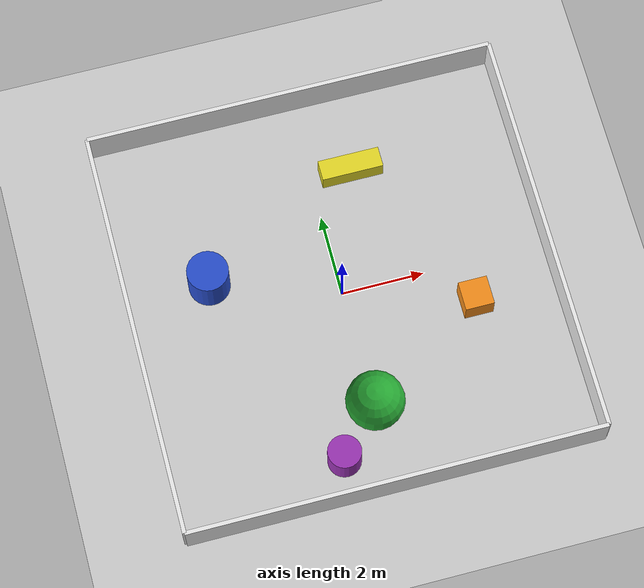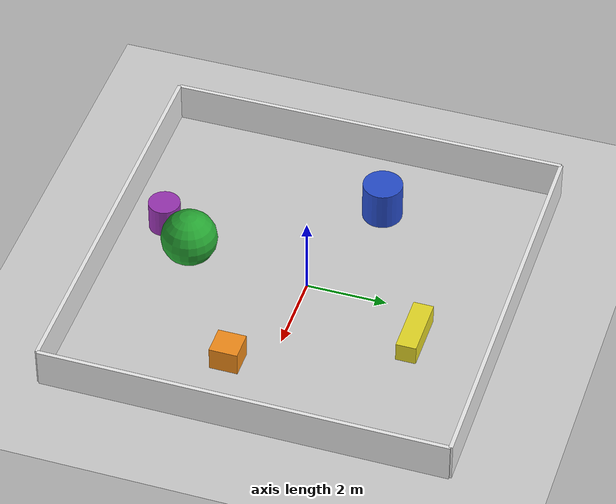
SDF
<?xml version="1.0" ?>
<sdf version="1.7">
  <world name="task_world">

    <!-- Ground Plane -->
    <model name="ground_plane">
      <static>true</static>
      <link name="link">
        <collision name="collision">
          <geometry>
            <plane>
              <normal>0 0 1</normal>
              <size>20 20</size>
            </plane>
          </geometry>
          <surface>
            <friction>
              <ode>
                <mu>0.6</mu>
                <mu2>0.6</mu2>
              </ode>
            </friction>
          </surface>
        </collision>
        <visual name="visual">
          <geometry>
            <plane>
              <normal>0 0 1</normal>
              <size>20 20</size>
            </plane>
          </geometry>
          <material>
            <script>
              <uri>file://media/materials/scripts/gazebo.material</uri>
              <name>Gazebo/Grey</name>
            </script>
          </material>
        </visual>
      </link>
    </model>

    <!-- Boundaries (Walls) -->
    <model name="wall_north">
      <static>true</static>
      <pose>0 5 0.5 0 0 0</pose>
      <link name="link">
        <collision name="collision">
          <geometry><box><size>10.0 0.1 1.0</size></box></geometry>
        </collision>
        <visual name="visual">
          <geometry><box><size>10.0 0.1 1.0</size></box></geometry>
          <material>
            <script><uri>file://media/materials/scripts/gazebo.material</uri><name>Gazebo/White</name></script>
          </material>
        </visual>
      </link>
    </model>

    <model name="wall_south">
      <static>true</static>
      <pose>0 -5 0.5 0 0 0</pose>
      <link name="link">
        <collision name="collision">
          <geometry><box><size>10.0 0.1 1.0</size></box></geometry>
        </collision>
        <visual name="visual">
          <geometry><box><size>10.0 0.1 1.0</size></box></geometry>
          <material>
            <script><uri>file://media/materials/scripts/gazebo.material</uri><name>Gazebo/White</name></script>
          </material>
        </visual>
      </link>
    </model>

    <model name="wall_east">
      <static>true</static>
      <pose>5 0 0.5 0 0 1.5708</pose>
      <link name="link">
        <collision name="collision">
          <geometry><box><size>10.0 0.1 1.0</size></box></geometry>
        </collision>
        <visual name="visual">
          <geometry><box><size>10.0 0.1 1.0</size></box></geometry>
          <material>
            <script><uri>file://media/materials/scripts/gazebo.material</uri><name>Gazebo/White</name></script>
          </material>
        </visual>
      </link>
    </model>

    <model name="wall_west">
      <static>true</static>
      <pose>-5 0 0.5 0 0 1.5708</pose>
      <link name="link">
        <collision name="collision">
          <geometry><box><size>10.0 0.1 1.0</size></box></geometry>
        </collision>
        <visual name="visual">
          <geometry><box><size>10.0 0.1 1.0</size></box></geometry>
          <material>
            <script><uri>file://media/materials/scripts/gazebo.material</uri><name>Gazebo/White</name></script>
          </material>
        </visual>
      </link>
    </model>

    <!-- New Obstacles -->
    <model name="obstacle1">
      <static>true</static>
      <pose>-3 1 0.5 0 0 0</pose>
      <link name="link">
        <collision name="collision">
          <geometry><cylinder><radius>0.5</radius><height>1.0</height></cylinder></geometry>
        </collision>
        <visual name="visual">
          <geometry><cylinder><radius>0.5</radius><height>1.0</height></cylinder></geometry>
          <material>
            <script><uri>file://media/materials/scripts/gazebo.material</uri><name>Gazebo/Blue</name></script>
          </material>
        </visual>
      </link>
    </model>

    <model name="obstacle2">
      <static>true</static>
      <pose>1 3 0.25 0 0 0</pose>
      <link name="link">
        <collision name="collision">
          <geometry><box><size>1.5 0.5 0.5</size></box></geometry>
        </collision>
        <visual name="visual">
          <geometry><box><size>1.5 0.5 0.5</size></box></geometry>
          <material>
            <script><uri>file://media/materials/scripts/gazebo.material</uri><name>Gazebo/Yellow</name></script>
          </material>
        </visual>
      </link>
    </model>

    <model name="obstacle3">
      <static>true</static>
      <pose>0 -3 0.75 0 0 0</pose>
      <link name="link">
        <collision name="collision">
          <geometry><sphere><radius>0.7</radius></sphere></geometry>
        </collision>
        <visual name="visual">
          <geometry><sphere><radius>0.7</radius></sphere></geometry>
          <material>
            <script><uri>file://media/materials/scripts/gazebo.material</uri><name>Gazebo/Green</name></script>
          </material>
        </visual>
      </link>
    </model>

    <model name="obstacle4">
      <static>true</static>
      <pose>3 -1 0.3 0 0 0</pose>
      <link name="link">
        <collision name="collision">
          <geometry><box><size>0.7 0.7 0.6</size></box></geometry>
        </collision>
        <visual name="visual">
          <geometry><box><size>0.7 0.7 0.6</size></box></geometry>
          <material>
            <script><uri>file://media/materials/scripts/gazebo.material</uri><name>Gazebo/Orange</name></script>
          </material>
        </visual>
      </link>
    </model>

    <model name="obstacle5">
      <static>true</static>
      <pose>-1 -4 0.25 0 0 0</pose>
      <link name="link">
        <collision name="collision">
          <geometry><cylinder><radius>0.4</radius><height>0.5</height></cylinder></geometry>
        </collision>
        <visual name="visual">
          <geometry><cylinder><radius>0.4</radius><height>0.5</height></cylinder></geometry>
          <material>
            <script><uri>file://media/materials/scripts/gazebo.material</uri><name>Gazebo/Purple</name></script>
          </material>
        </visual>
      </link>
    </model>

    <!-- Lighting -->
    <light name="sun" type="directional">
      <pose>0 0 10 0 0 0</pose>
      <diffuse>0.8 0.8 0.8 1</diffuse>
      <specular>0.2 0.2 0.2 1</specular>
      <direction>0.0 0.0 -1.0</direction>
    </light>

    <!-- Physics Settings -->
    <physics type="ode">
      <max_step_size>0.001</max_step_size>
      <real_time_factor>1.0</real_time_factor>
      <real_time_update_rate>1000</real_time_update_rate>
    </physics>

  </world>
</sdf>
